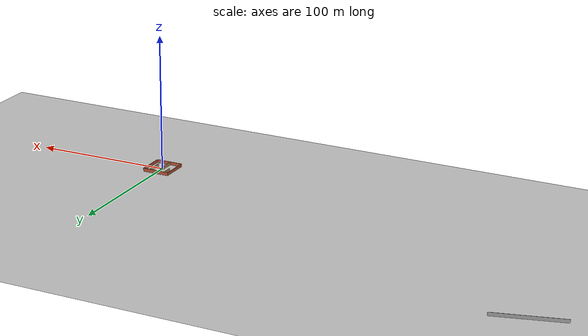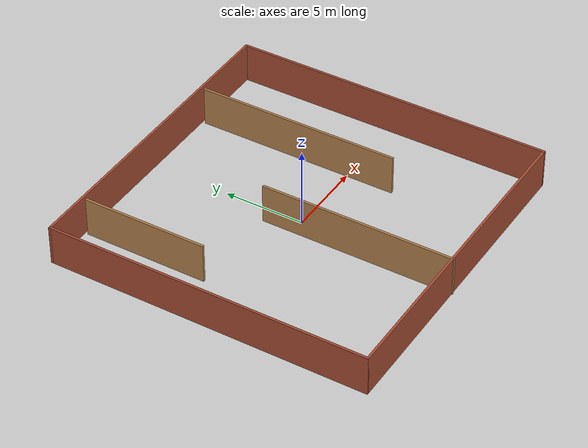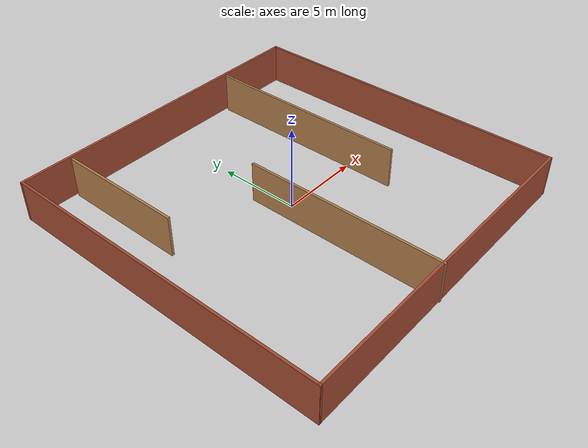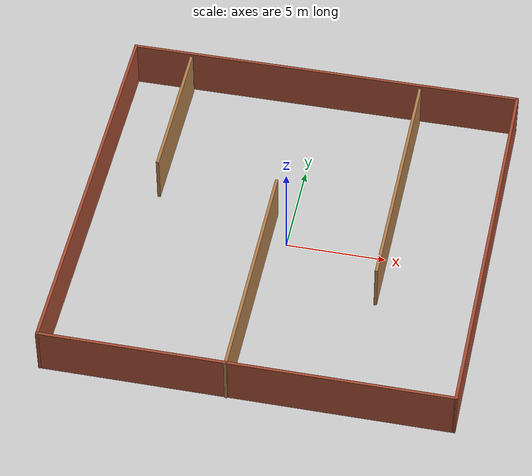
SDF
<sdf version="1.7">
 <world name="default">
  <light name="sun" type="directional">
   <pose>0 0 10 0 -0 0</pose>
   <diffuse>0.8 0.8 0.8 1</diffuse>
   <specular>0.2 0.2 0.2 1</specular>
   <attenuation>
    <range>1000</range>
    <constant>0.9</constant>
    <linear>0.01</linear>
    <quadratic>0.001</quadratic>
   </attenuation>
   <direction>-0.5 0.1 -0.9</direction>
   <spot><inner_angle>0</inner_angle><outer_angle>0</outer_angle><falloff>0</falloff></spot>
  </light>
  <model name="ground_plane">
   <static>1</static>
   <link name="link">
    <collision name="collision">
     <geometry><plane><normal>0 0 1</normal><size>100 100</size></plane></geometry>
     <surface>
      <contact><collide_bitmask>65535</collide_bitmask></contact>
      <friction><ode><mu>100</mu><mu2>50</mu2></ode></friction>
     </surface>
    </collision>
    <visual name="visual">
     <cast_shadows>0</cast_shadows>
     <geometry><plane><normal>0 0 1</normal><size>100 100</size></plane></geometry>
     <material>
      <script><uri>file://media/materials/scripts/gazebo.material</uri><name>Gazebo/Grey</name></script>
     </material>
    </visual>
   </link>
  </model>
  <gravity>0 0 -9.8</gravity>
  <magnetic_field>6e-06 2.3e-05 -4.2e-05</magnetic_field>
  <atmosphere type="adiabatic"/>
  <physics type="ode">
   <max_step_size>0.001</max_step_size>
   <real_time_factor>1</real_time_factor>
   <real_time_update_rate>1000</real_time_update_rate>
  </physics>
  <scene><ambient>0.4 0.4 0.4 1</ambient><background>0.7 0.7 0.7 1</background><shadows>1</shadows></scene>
  <spherical_coordinates>
   <surface_model>EARTH_WGS84</surface_model>
   <latitude_deg>0</latitude_deg>
   <longitude_deg>0</longitude_deg>
   <elevation>0</elevation>
   <heading_deg>0</heading_deg>
  </spherical_coordinates>
  <model name="All_Q_Wall">
   <link name="Wall_0">
    <collision name="Wall_0_Collision">
     <geometry><box><size>20.15 0.15 2.5</size></box></geometry>
     <pose>0 0 1.25 0 -0 0</pose>
    </collision>
    <visual name="Wall_0_Visual">
     <pose>0 0 1.25 0 -0 0</pose>
     <geometry><box><size>20.15 0.15 2.5</size></box></geometry>
     <material>
      <script><uri>file://media/materials/scripts/gazebo.material</uri><name>Gazebo/Bricks</name></script>
      <ambient>1 1 1 1</ambient>
     </material>
     <meta><layer>0</layer></meta>
    </visual>
    <pose>0 -10 0 0 -0 0</pose>
   </link>
   <link name="Wall_2">
    <collision name="Wall_2_Collision">
     <geometry><box><size>20.15 0.15 2.5</size></box></geometry>
     <pose>0 0 1.25 0 -0 0</pose>
    </collision>
    <visual name="Wall_2_Visual">
     <pose>0 0 1.25 0 -0 0</pose>
     <geometry><box><size>20.15 0.15 2.5</size></box></geometry>
     <material>
      <script><uri>file://media/materials/scripts/gazebo.material</uri><name>Gazebo/Bricks</name></script>
      <ambient>1 1 1 1</ambient>
     </material>
     <meta><layer>0</layer></meta>
    </visual>
    <pose>0 10 0 0 -0 0</pose>
   </link>
   <link name="Wall_4">
    <collision name="Wall_4_Collision">
     <geometry><box><size>20.15 0.15 2.5</size></box></geometry>
     <pose>0 0 1.25 0 -0 0</pose>
    </collision>
    <visual name="Wall_4_Visual">
     <pose>0 0 1.25 0 -0 0</pose>
     <geometry><box><size>20.15 0.15 2.5</size></box></geometry>
     <material>
      <script><uri>file://media/materials/scripts/gazebo.material</uri><name>Gazebo/Bricks</name></script>
      <ambient>1 1 1 1</ambient>
     </material>
     <meta><layer>0</layer></meta>
    </visual>
    <pose>-10 0 0 0 -0 -1.5708</pose>
   </link>
   <link name="Wall_6">
    <collision name="Wall_6_Collision">
     <geometry><box><size>20.15 0.15 2.5</size></box></geometry>
     <pose>0 0 1.25 0 -0 0</pose>
    </collision>
    <visual name="Wall_6_Visual">
     <pose>0 0 1.25 0 -0 0</pose>
     <geometry><box><size>20.15 0.15 2.5</size></box></geometry>
     <material>
      <script><uri>file://media/materials/scripts/gazebo.material</uri><name>Gazebo/Bricks</name></script>
      <ambient>1 1 1 1</ambient>
     </material>
     <meta><layer>0</layer></meta>
    </visual>
    <pose>10 0 0 0 -0 1.5708</pose>
   </link>
   <static>1</static>
  </model>
  <model name="All_Q_walls">
   <pose>-169.497 57.5017 0 0 -0 0</pose>
   <link name="Wall_12">
    <collision name="Wall_12_Collision">
     <geometry><box><size>7.75 0.15 2.5</size></box></geometry>
     <pose>0 0 1.25 0 -0 0</pose>
    </collision>
    <visual name="Wall_12_Visual">
     <pose>0 0 1.25 0 -0 0</pose>
     <geometry><box><size>7.75 0.15 2.5</size></box></geometry>
     <material>
      <script><uri>file://media/materials/scripts/gazebo.material</uri><name>Gazebo/Wood</name></script>
      <ambient>1 1 1 1</ambient>
     </material>
     <meta><layer>0</layer></meta>
    </visual>
    <pose>162.51 -51.6262 0 0 -0 -1.5708</pose>
   </link>
   <link name="Wall_14">
    <collision name="Wall_14_Collision">
     <geometry><box><size>12.13 0.15 2.5</size></box></geometry>
     <pose>0 0 1.25 0 -0 0</pose>
    </collision>
    <visual name="Wall_14_Visual">
     <pose>0 0 1.25 0 -0 0</pose>
     <geometry><box><size>12.13 0.15 2.5</size></box></geometry>
     <material>
      <script><uri>file://media/materials/scripts/gazebo.material</uri><name>Gazebo/Wood</name></script>
      <ambient>1 1 1 1</ambient>
     </material>
     <meta><layer>0</layer></meta>
    </visual>
    <pose>168.594 -61.5577 0 0 -0 -1.5708</pose>
   </link>
   <link name="Wall_19">
    <collision name="Wall_19_Collision">
     <geometry><box><size>12.75 0.15 2.5</size></box></geometry>
     <pose>0 0 1.25 0 -0 0</pose>
    </collision>
    <visual name="Wall_19_Visual">
     <pose>0 0 1.25 0 -0 0</pose>
     <geometry><box><size>12.75 0.15 2.5</size></box></geometry>
     <material>
      <script><uri>file://media/materials/scripts/gazebo.material</uri><name>Gazebo/Wood</name></script>
      <ambient>1 1 1 1</ambient>
     </material>
     <meta><layer>0</layer></meta>
    </visual>
    <pose>174.509 -54.1215 0 0 -0 -1.5708</pose>
   </link>
   <link name="Wall_8">
    <collision name="Wall_8_Collision">
     <geometry><box><size>49.25 0.15 2.5</size></box></geometry>
     <pose>0 0 1.25 0 -0 0</pose>
    </collision>
    <visual name="Wall_8_Visual">
     <pose>0 0 1.25 0 -0 0</pose>
     <geometry><box><size>49.25 0.15 2.5</size></box></geometry>
     <material>
      <script><uri>file://media/materials/scripts/gazebo.material</uri><name>Gazebo/Grey</name></script>
      <ambient>1 1 1 1</ambient>
     </material>
     <meta><layer>0</layer></meta>
    </visual>
    <pose>-150.779 61.1768 0 0 -0 0.261799</pose>
   </link>
   <static>1</static>
  </model>
 </world>
</sdf>
